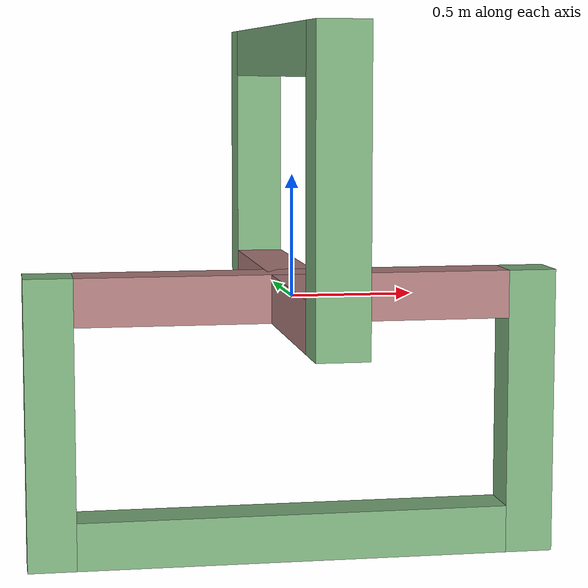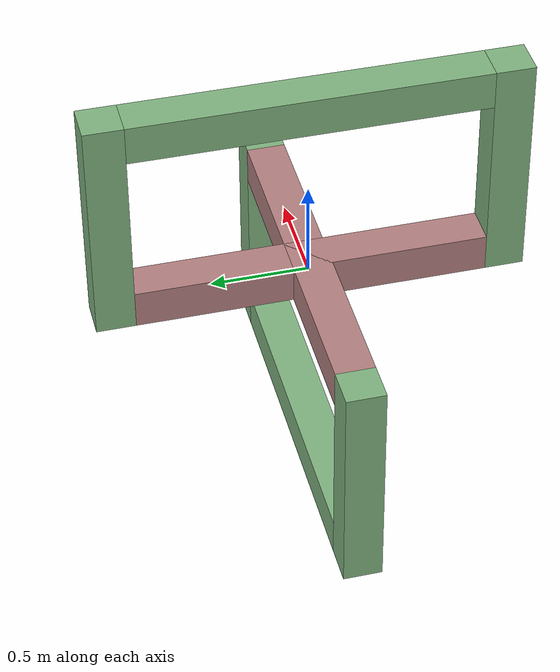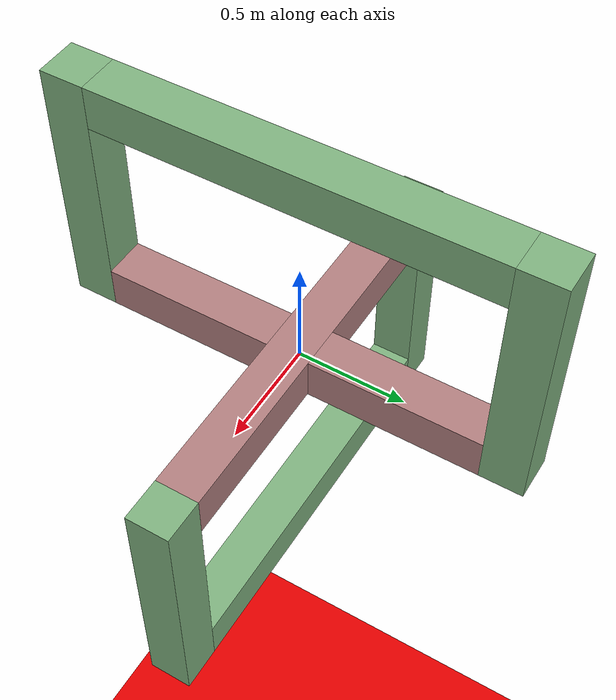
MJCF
<mujoco>
    <option gravity="0 0 -9.81">
        <flag contact="disable"/>
    </option>
    <actuator>
        <position name="yaw pos" gear="1" joint="yaw" kp="1000000" dampratio="1"/>
        <position name="pitch pos" gear="1" joint="pitch" kp="1000000" dampratio="1"/>
    </actuator>

    <asset>
        <material name="col_blue" rgba="0 0 1 1" />
        <material name="col_green" rgba="0 1 0 1" />
        <material name="col_red" rgba="1 0 0 1" />
        <material name="col_white" rgba="1 1 1 1" />
        <material name="col_la" rgba="0.5 0.7 0.5 1" />
        <material name="col_lb" rgba="0.7 0.5 0.5 1" />
    </asset>
    <worldbody>
        <body name="link_static" pos="0 0 -1">
            <geom type="plane" size="10 10 0.1" pos="0 0 -5" rgba=".9 0 0 1" />

            <geom type="box" pos="0 0 0" euler="0 0 0" size=".9 .1 .1" material="col_la" />
            <geom type="box" pos="-1 0 .5" euler="0 0 0" size=".1 .1 .6" material="col_la" />
            <geom type="box" pos="1 0 .5" euler="0 0 0" size=".1 .1 .6" material="col_la" />

            <body name="link_cross" pos="0 0 1" euler="0 0 0">
                <joint name="yaw" type="hinge" pos="0 0 0" axis="1 0 0" />
                <geom type="box" pos="0 0 0" euler="0 0 0" size=".9 .1 .1" material="col_lb" />
                <geom type="box" pos="0 0 0" euler="0 0 0" size=".1 .9 .1" material="col_lb" />

                <body name="link_end" pos="0 0 0" euler="0 0 0">
                    <joint name="pitch" type="hinge" pos="0 0 0" axis="0 1 0" />
                    <geom type="box" pos="0 1 .5" euler="0 0 0" size=".1 .1 .6" material="col_la" />
                    <geom type="box" pos="0 -1 .5" euler="0 0 0" size=".1 .1 .6" material="col_la" />
                    <geom type="box" pos="0 0 1" euler="0 0 0" size=".1 .9 .1" material="col_la" />
                    <body name="end" pos="0 0 1" euler="0 0 0">
                        <geom type="sphere" pos="0 0 0" euler="0 0 0" size=".05" material="col_lb" mass="0" />
                    </body>
                </body>
            </body>
        </body>
    </worldbody>
    <contact>
        <exclude body1="link_static" body2="link_cross" />
        <exclude body1="link_cross" body2="link_end" />
        <exclude body1="link_static" body2="link_end" />
    </contact>
</mujoco>
